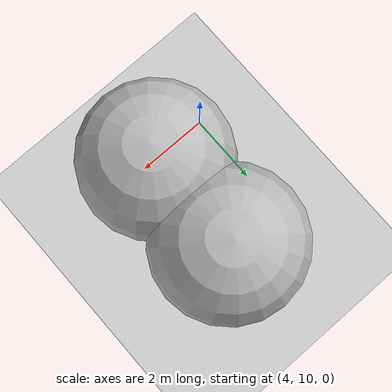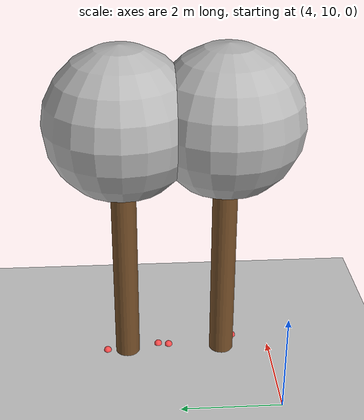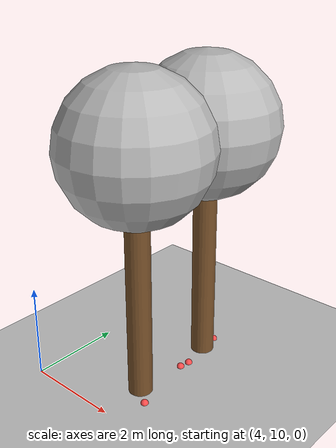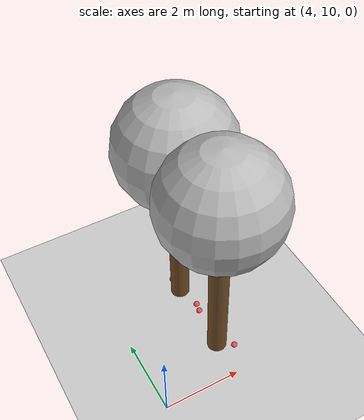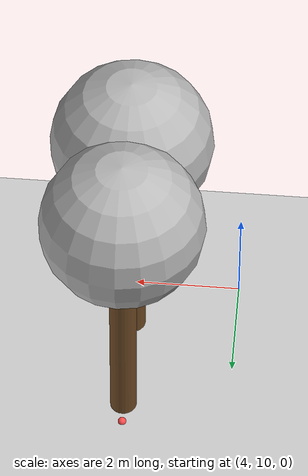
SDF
<sdf version="1.7">
 <world name="default">
  <model name="ground_plane">
   <static>1</static>
   <link name="link">
    <collision name="collision">
     <geometry><plane><normal>0 0 1</normal><size>100 100</size></plane></geometry>
     <surface>
      <contact><collide_bitmask>65535</collide_bitmask></contact>
      <friction><ode><mu>100</mu><mu2>50</mu2></ode></friction>
     </surface>
    </collision>
    <visual name="visual">
     <cast_shadows>0</cast_shadows>
     <geometry><plane><normal>0 0 1</normal><size>100 100</size></plane></geometry>
     <material>
      <script><uri>file://media/materials/scripts/gazebo.material</uri><name>Gazebo/Grey</name></script>
     </material>
    </visual>
   </link>
  </model>
  <model name="tree_simple_61">
   <static>1</static>
   <link name="link">
    <pose>0 0 0.1 0 -0 0</pose>
    <inertial>
     <mass>666</mass>
     <inertia>
      <ixx>0.0861167</ixx>
      <ixy>0</ixy>
      <ixz>0</ixz>
      <iyy>0.0861167</iyy>
      <iyz>0</iyz>
      <izz>0.0861167</izz>
     </inertia>
    </inertial>
    <collision name="collision_trunk">
     <pose>0 0 2 0 -0 0</pose>
     <geometry><cylinder><radius>0.25</radius><length>4</length></cylinder></geometry>
     <surface>
      <contact>
       <poissons_ratio>0.347</poissons_ratio>
       <elastic_modulus>8.8e+09</elastic_modulus>
       <ode><kp>100000</kp><kd>100</kd><max_vel>100</max_vel><min_depth>0.001</min_depth></ode>
      </contact>
      <friction>
       <torsional>
        <coefficient>1</coefficient>
        <use_patch_radius>0</use_patch_radius>
        <surface_radius>0.01</surface_radius>
       </torsional>
      </friction>
     </surface>
    </collision>
    <collision name="collision_treetop">
     <pose>0 0 5.2 0 -0 0</pose>
     <geometry><sphere><radius>1.5</radius></sphere></geometry>
     <surface>
      <contact>
       <poissons_ratio>0.347</poissons_ratio>
       <elastic_modulus>8.8e+09</elastic_modulus>
       <ode><kp>100000</kp><kd>100</kd><max_vel>100</max_vel><min_depth>0.001</min_depth></ode>
      </contact>
      <friction>
       <torsional>
        <coefficient>1</coefficient>
        <use_patch_radius>0</use_patch_radius>
        <surface_radius>0.01</surface_radius>
       </torsional>
      </friction>
     </surface>
    </collision>
    <visual name="trunk">
     <pose>0 0 2 0 -0 0</pose>
     <geometry><cylinder><radius>0.25</radius><length>4</length></cylinder></geometry>
     <material>
      <script>
       <uri>model://tree_simple/scripts</uri>
       <uri>model://tree_simple/materials/textures</uri>
       <name>TreeSimple/Trunk</name>
      </script>
     </material>
    </visual>
    <visual name="treetop">
     <pose>0 0 5.2 0 -0 0</pose>
     <geometry><sphere><radius>1.5</radius></sphere></geometry>
     <material>
      <script>
       <uri>model://tree_simple/scripts</uri>
       <uri>model://tree_simple/materials/textures</uri>
       <name>TreeSimple/Treetop</name>
      </script>
     </material>
    </visual>
   </link>
   <pose>6 13 -0.1 0 -0 0</pose>
  </model>
  <model name="tree_simple_66">
   <static>1</static>
   <link name="link">
    <pose>0 0 0.1 0 -0 0</pose>
    <inertial>
     <mass>666</mass>
     <inertia>
      <ixx>0.0861167</ixx>
      <ixy>0</ixy>
      <ixz>0</ixz>
      <iyy>0.0861167</iyy>
      <iyz>0</iyz>
      <izz>0.0861167</izz>
     </inertia>
    </inertial>
    <collision name="collision_trunk">
     <pose>0 0 2 0 -0 0</pose>
     <geometry><cylinder><radius>0.25</radius><length>4</length></cylinder></geometry>
     <surface>
      <contact>
       <poissons_ratio>0.347</poissons_ratio>
       <elastic_modulus>8.8e+09</elastic_modulus>
       <ode><kp>100000</kp><kd>100</kd><max_vel>100</max_vel><min_depth>0.001</min_depth></ode>
      </contact>
      <friction>
       <torsional>
        <coefficient>1</coefficient>
        <use_patch_radius>0</use_patch_radius>
        <surface_radius>0.01</surface_radius>
       </torsional>
      </friction>
     </surface>
    </collision>
    <collision name="collision_treetop">
     <pose>0 0 5.2 0 -0 0</pose>
     <geometry><sphere><radius>1.5</radius></sphere></geometry>
     <surface>
      <contact>
       <poissons_ratio>0.347</poissons_ratio>
       <elastic_modulus>8.8e+09</elastic_modulus>
       <ode><kp>100000</kp><kd>100</kd><max_vel>100</max_vel><min_depth>0.001</min_depth></ode>
      </contact>
      <friction>
       <torsional>
        <coefficient>1</coefficient>
        <use_patch_radius>0</use_patch_radius>
        <surface_radius>0.01</surface_radius>
       </torsional>
      </friction>
     </surface>
    </collision>
    <visual name="trunk">
     <pose>0 0 2 0 -0 0</pose>
     <geometry><cylinder><radius>0.25</radius><length>4</length></cylinder></geometry>
     <material>
      <script>
       <uri>model://tree_simple/scripts</uri>
       <uri>model://tree_simple/materials/textures</uri>
       <name>TreeSimple/Trunk</name>
      </script>
     </material>
    </visual>
    <visual name="treetop">
     <pose>0 0 5.2 0 -0 0</pose>
     <geometry><sphere><radius>1.5</radius></sphere></geometry>
     <material>
      <script>
       <uri>model://tree_simple/scripts</uri>
       <uri>model://tree_simple/materials/textures</uri>
       <name>TreeSimple/Treetop</name>
      </script>
     </material>
    </visual>
   </link>
   <pose>6 11 -0.1 0 -0 0</pose>
  </model>
  <model name="seed_red_257">
   <link name="link">
    <inertial>
     <mass>1</mass>
     <inertia><ixx>0.1</ixx><ixy>0</ixy><ixz>0</ixz><iyy>0.1</iyy><iyz>0</iyz><izz>0.1</izz></inertia>
    </inertial>
    <visual name="visual">
     <geometry><sphere><radius>0.08</radius></sphere></geometry>
     <material>
      <script><name>Gazebo/Grey</name><uri>file://media/materials/scripts/gazebo.material</uri></script>
      <shader type="pixel"><normal_map>__default__</normal_map></shader>
      <ambient>1 0.3 0.3 1</ambient>
      <diffuse>0.7 0.7 0.7 1</diffuse>
      <specular>0.01 0.01 0.01 1</specular>
      <emissive>0 0 0 1</emissive>
     </material>
    </visual>
    <collision name="collision">
     <geometry><sphere><radius>0.0005</radius></sphere></geometry>
     <surface>
      <friction>
       <ode><mu>1</mu><mu2>1</mu2><fdir1>0 0 0</fdir1><slip1>0</slip1><slip2>0</slip2></ode>
       <torsional>
        <coefficient>1</coefficient>
        <patch_radius>0</patch_radius>
        <surface_radius>0</surface_radius>
        <use_patch_radius>1</use_patch_radius>
        <ode><slip>0</slip></ode>
       </torsional>
      </friction>
      <bounce><restitution_coefficient>0</restitution_coefficient><threshold>1e+06</threshold></bounce>
      <contact>
       <collide_without_contact>0</collide_without_contact>
       <collide_without_contact_bitmask>1</collide_without_contact_bitmask>
       <collide_bitmask>1</collide_bitmask>
       <ode>
        <soft_cfm>0</soft_cfm>
        <soft_erp>0.2</soft_erp>
        <kp>1e+13</kp>
        <kd>1</kd>
        <max_vel>0.01</max_vel>
        <min_depth>0</min_depth>
       </ode>
       <bullet>
        <split_impulse>1</split_impulse>
        <split_impulse_penetration_threshold>-0.01</split_impulse_penetration_threshold>
        <soft_cfm>0</soft_cfm>
        <soft_erp>0.2</soft_erp>
        <kp>1e+13</kp>
        <kd>1</kd>
       </bullet>
      </contact>
     </surface>
    </collision>
   </link>
   <static>0</static>
   <pose>6.15394 12.3457 0.0005 0 -0 0</pose>
  </model>
  <model name="seed_red_263">
   <link name="link">
    <inertial>
     <mass>1</mass>
     <inertia><ixx>0.1</ixx><ixy>0</ixy><ixz>0</ixz><iyy>0.1</iyy><iyz>0</iyz><izz>0.1</izz></inertia>
    </inertial>
    <visual name="visual">
     <geometry><sphere><radius>0.08</radius></sphere></geometry>
     <material>
      <script><name>Gazebo/Grey</name><uri>file://media/materials/scripts/gazebo.material</uri></script>
      <shader type="pixel"><normal_map>__default__</normal_map></shader>
      <ambient>1 0.3 0.3 1</ambient>
      <diffuse>0.7 0.7 0.7 1</diffuse>
      <specular>0.01 0.01 0.01 1</specular>
      <emissive>0 0 0 1</emissive>
     </material>
    </visual>
    <collision name="collision">
     <geometry><sphere><radius>0.0005</radius></sphere></geometry>
     <surface>
      <friction>
       <ode><mu>1</mu><mu2>1</mu2><fdir1>0 0 0</fdir1><slip1>0</slip1><slip2>0</slip2></ode>
       <torsional>
        <coefficient>1</coefficient>
        <patch_radius>0</patch_radius>
        <surface_radius>0</surface_radius>
        <use_patch_radius>1</use_patch_radius>
        <ode><slip>0</slip></ode>
       </torsional>
      </friction>
      <bounce><restitution_coefficient>0</restitution_coefficient><threshold>1e+06</threshold></bounce>
      <contact>
       <collide_without_contact>0</collide_without_contact>
       <collide_without_contact_bitmask>1</collide_without_contact_bitmask>
       <collide_bitmask>1</collide_bitmask>
       <ode>
        <soft_cfm>0</soft_cfm>
        <soft_erp>0.2</soft_erp>
        <kp>1e+13</kp>
        <kd>1</kd>
        <max_vel>0.01</max_vel>
        <min_depth>0</min_depth>
       </ode>
       <bullet>
        <split_impulse>1</split_impulse>
        <split_impulse_penetration_threshold>-0.01</split_impulse_penetration_threshold>
        <soft_cfm>0</soft_cfm>
        <soft_erp>0.2</soft_erp>
        <kp>1e+13</kp>
        <kd>1</kd>
       </bullet>
      </contact>
     </surface>
    </collision>
   </link>
   <static>0</static>
   <pose>5.9863 13.4325 0.0005 0 -0 0</pose>
  </model>
  <model name="seed_red_269">
   <link name="link">
    <inertial>
     <mass>1</mass>
     <inertia><ixx>0.1</ixx><ixy>0</ixy><ixz>0</ixz><iyy>0.1</iyy><iyz>0</iyz><izz>0.1</izz></inertia>
    </inertial>
    <visual name="visual">
     <geometry><sphere><radius>0.08</radius></sphere></geometry>
     <material>
      <script><name>Gazebo/Grey</name><uri>file://media/materials/scripts/gazebo.material</uri></script>
      <shader type="pixel"><normal_map>__default__</normal_map></shader>
      <ambient>1 0.3 0.3 1</ambient>
      <diffuse>0.7 0.7 0.7 1</diffuse>
      <specular>0.01 0.01 0.01 1</specular>
      <emissive>0 0 0 1</emissive>
     </material>
    </visual>
    <collision name="collision">
     <geometry><sphere><radius>0.0005</radius></sphere></geometry>
     <surface>
      <friction>
       <ode><mu>1</mu><mu2>1</mu2><fdir1>0 0 0</fdir1><slip1>0</slip1><slip2>0</slip2></ode>
       <torsional>
        <coefficient>1</coefficient>
        <patch_radius>0</patch_radius>
        <surface_radius>0</surface_radius>
        <use_patch_radius>1</use_patch_radius>
        <ode><slip>0</slip></ode>
       </torsional>
      </friction>
      <bounce><restitution_coefficient>0</restitution_coefficient><threshold>1e+06</threshold></bounce>
      <contact>
       <collide_without_contact>0</collide_without_contact>
       <collide_without_contact_bitmask>1</collide_without_contact_bitmask>
       <collide_bitmask>1</collide_bitmask>
       <ode>
        <soft_cfm>0</soft_cfm>
        <soft_erp>0.2</soft_erp>
        <kp>1e+13</kp>
        <kd>1</kd>
        <max_vel>0.01</max_vel>
        <min_depth>0</min_depth>
       </ode>
       <bullet>
        <split_impulse>1</split_impulse>
        <split_impulse_penetration_threshold>-0.01</split_impulse_penetration_threshold>
        <soft_cfm>0</soft_cfm>
        <soft_erp>0.2</soft_erp>
        <kp>1e+13</kp>
        <kd>1</kd>
       </bullet>
      </contact>
     </surface>
    </collision>
   </link>
   <static>0</static>
   <pose>6.11501 12.1224 0.0005 0 -0 0</pose>
  </model>
  <model name="seed_red_273">
   <link name="link">
    <inertial>
     <mass>1</mass>
     <inertia><ixx>0.1</ixx><ixy>0</ixy><ixz>0</ixz><iyy>0.1</iyy><iyz>0</iyz><izz>0.1</izz></inertia>
    </inertial>
    <visual name="visual">
     <geometry><sphere><radius>0.08</radius></sphere></geometry>
     <material>
      <script><name>Gazebo/Grey</name><uri>file://media/materials/scripts/gazebo.material</uri></script>
      <shader type="pixel"><normal_map>__default__</normal_map></shader>
      <ambient>1 0.3 0.3 1</ambient>
      <diffuse>0.7 0.7 0.7 1</diffuse>
      <specular>0.01 0.01 0.01 1</specular>
      <emissive>0 0 0 1</emissive>
     </material>
    </visual>
    <collision name="collision">
     <geometry><sphere><radius>0.0005</radius></sphere></geometry>
     <surface>
      <friction>
       <ode><mu>1</mu><mu2>1</mu2><fdir1>0 0 0</fdir1><slip1>0</slip1><slip2>0</slip2></ode>
       <torsional>
        <coefficient>1</coefficient>
        <patch_radius>0</patch_radius>
        <surface_radius>0</surface_radius>
        <use_patch_radius>1</use_patch_radius>
        <ode><slip>0</slip></ode>
       </torsional>
      </friction>
      <bounce><restitution_coefficient>0</restitution_coefficient><threshold>1e+06</threshold></bounce>
      <contact>
       <collide_without_contact>0</collide_without_contact>
       <collide_without_contact_bitmask>1</collide_without_contact_bitmask>
       <collide_bitmask>1</collide_bitmask>
       <ode>
        <soft_cfm>0</soft_cfm>
        <soft_erp>0.2</soft_erp>
        <kp>1e+13</kp>
        <kd>1</kd>
        <max_vel>0.01</max_vel>
        <min_depth>0</min_depth>
       </ode>
       <bullet>
        <split_impulse>1</split_impulse>
        <split_impulse_penetration_threshold>-0.01</split_impulse_penetration_threshold>
        <soft_cfm>0</soft_cfm>
        <soft_erp>0.2</soft_erp>
        <kp>1e+13</kp>
        <kd>1</kd>
       </bullet>
      </contact>
     </surface>
    </collision>
   </link>
   <static>0</static>
   <pose>6.37178 10.7263 0.0005 0 -0 0</pose>
  </model>
 </world>
</sdf>
